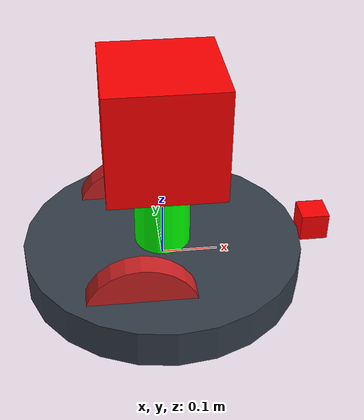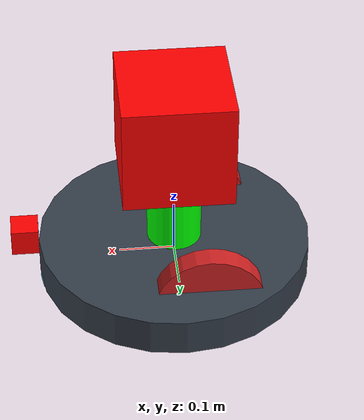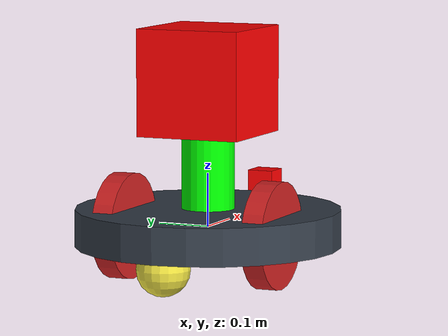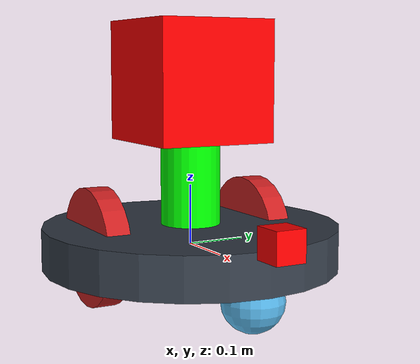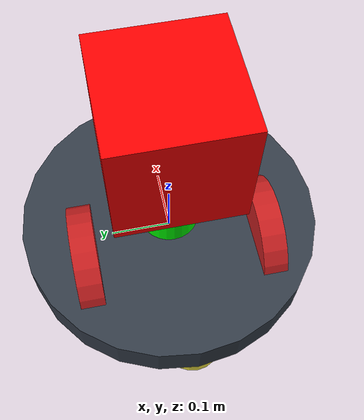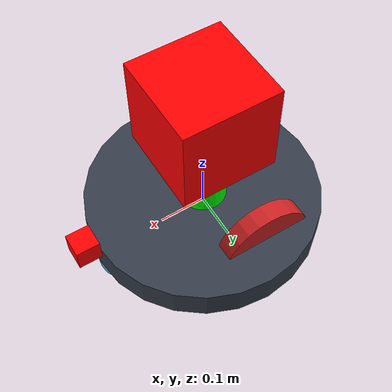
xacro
<?xml version="1.0"?>
<robot xmlns:xacro="http://www.ros.org/wiki/xacro" name="robot_xacro">
    <xacro:include filename="$(find robot_simulation_description)/urdf/robot.gazebo"/>

    <xacro:property name="length_wheel" value="0.04" />
    <xacro:property name="radius_wheel" value="0.1" />

    <xacro:macro name="default_inertial" params="mass">
        <inertial>
            <mass value="${mass}" />
            <origin rpy="0 1.5707 1.5707" xyz="0 0 0"/>
            <inertia ixx="0.000526666666667" ixy="0" ixz="0" iyy="0.000526666666667" iyz="0" izz="0.001"/>
        </inertial>
    </xacro:macro>

    <xacro:macro name="wheel_geometry">
        <geometry>
            <cylinder length="${length_wheel}" radius="${radius_wheel}"/>
        </geometry>
    </xacro:macro>

    <material name="black">
        <color rgba="0.0 0.0 0.0 1.0"/>
    </material>

    <material name="blue">
        <color rgba="0.203125 0.23828125 0.28515625 1.0"/>
    </material>

    <material name="green">
        <color rgba="0.0 0.8 0.0 1.0"/>
    </material>

    <material name="grey">
        <color rgba="0.2 0.2 0.2 1.0"/>
    </material>

    <material name="orange">
        <color rgba="1.0 0.423529411765 0.0392156862745 1.0"/>
    </material>

    <material name="brown">
        <color rgba="0.870588235294 0.811764705882 0.764705882353 1.0"/>
    </material>

    <material name="red">
        <color rgba="0.80078125 0.12890625 0.1328125 1.0"/>
    </material>

    <material name="white">
        <color rgba="1.0 1.0 1.0 1.0"/>
    </material>

    <!--    The moving platform -->
    <link name="link_chassis">
        <!-- pose and inertial -->
        <pose>0 0 0.1 0 0 0</pose>
        <inertial>
            <mass value="5"/>
            <origin rpy="0 0 0" xyz="0 0 0.1"/>
            <inertia ixx="0.0395416666667" ixy="0" ixz="0" iyy="0.106208333333" iyz="0" izz="0.106208333333"/>
        </inertial>
        <!-- body -->
        <collision name="collision_chassis">
            <geometry>
                <cylinder length="0.07" radius="0.25"/>
            </geometry>
        </collision>
        <visual>
            <origin rpy="0 0 0" xyz="0 0 0"/>
            <geometry>
                <cylinder length="0.07" radius="0.25"/>
            </geometry>
            <material name="blue"/>
        </visual>
    </link>

    <!-- caster front  dummy-->
    <link name="dummy_front_castor">
            <xacro:default_inertial mass="0.001"/>
        <collision name="link_dummy_front_castor_collision">
            <origin rpy=" 0 0 0" xyz="0 0 0"/>
            <geometry>
                <sphere radius="0.05"/>
            </geometry>
        </collision>
        <visual name="link_dummy_front_castor_visual">
            <origin rpy=" 0 0 0" xyz="0 0 0"/>
            <geometry>
                <sphere radius="0.05"/>
            </geometry>
        </visual>
    </link>

    <!-- caster front -->
    <link name="link_caster_front_wheel">
            <xacro:default_inertial mass="0.2"/>
        <collision name="link_caster_front_wheel_collision">
            <origin rpy=" 0 0 0" xyz="0 0 0"/>
            <geometry>
                <sphere radius="0.05"/>
            </geometry>
        </collision>
        <visual name="link_caster_front_wheel_visual">
            <origin rpy=" 0 0 0" xyz="0 0 0"/>
            <geometry>
                <sphere radius="0.05"/>
            </geometry>
        </visual>
    </link>

    <!-- caster back  dummy-->
    <link name="dummy_back_castor">
            <xacro:default_inertial mass="0.001"/>
        <collision name="link_dummy_back_castor_collision">
            <origin rpy=" 0 0 0" xyz="0 0 0"/>
            <geometry>
                <sphere radius="0.05"/>
            </geometry>
        </collision>
        <visual name="link_dummy_back_castor_visual">
            <origin rpy=" 0 0 0" xyz="0 0 0"/>
            <geometry>
                <sphere radius="0.05"/>
            </geometry>
        </visual>
    </link>

    <!-- caster back -->
    <link name="link_caster_back_wheel">
            <xacro:default_inertial mass="0.2"/>
        <collision name="link_caster_back_wheel_collision">
            <origin rpy=" 0 0 0" xyz="0 0 0"/>
            <geometry>
                <sphere radius="0.05"/>
            </geometry>
        </collision>
        <visual name="link_caster_back_wheel_visual">
            <origin rpy=" 0 0 0" xyz="0 0 0"/>
            <geometry>
                <sphere radius="0.05"/>
            </geometry>
        </visual>
    </link>

    <!--    The right Wheel -->
    <link name="link_right_wheel">
        <xacro:default_inertial mass="0.2"/>
        <collision name="link_right_wheel_collision">
            <origin rpy="0 1.5707 1.5707" xyz="0 0 0"/>
            <xacro:wheel_geometry />
        </collision>
        <visual name="link_right_wheel_visual">
            <origin rpy="0 1.5707 1.5707" xyz="0 0 0"/>
            <xacro:wheel_geometry />
            <material name="red"/>
        </visual>
    </link>

    <!--    The left wheel  -->
    <link name="link_left_wheel">
        <xacro:default_inertial mass="0.2"/>
        <collision name="link_left_wheel_collision">
            <origin rpy="0 1.5707 1.5707" xyz="0 0 0"/>
            <xacro:wheel_geometry />
        </collision>
        <visual name="link_left_wheel_visual">
            <origin rpy="0 1.5707 1.5707" xyz="0 0 0"/>
            <xacro:wheel_geometry />
            <material name="red"/>
        </visual>
    </link>

    <!--    The neck    -->
    <link name="link_neck">
        <inertial>
            <mass value="0.1"/>
            <origin xyz="0 0 0" rpy="0 0 0" />
            <inertia ixx="0.0000416666667" ixy="0" ixz="0" iyy="0.0000416666667" iyz="0" izz="0.0000416666667"/>
        </inertial>
        <collision name="link_rotating_base_collision">
            <origin rpy="0 0 0" xyz="0 0 0" />
            <geometry>
                <cylinder length="0.15" radius="0.05"/>
            </geometry>
        </collision>
        <visual name="link_rotating_base_visual" >
            <origin rpy="0 0 0" xyz="0 0 0" />
            <geometry>
                <cylinder length="0.15" radius="0.05"/>
            </geometry>
            <material name="green">
              <color rgba="0 1 0 1"/>
            </material>
        </visual>
    </link>

    <!--    The Camera  -->
    <link name="camera_link">
        <collision>
            <origin xyz="0 0 0" rpy="0 0 0"/>
            <geometry>
                <box size="0.2 0.2 0.2"/>
            </geometry>
        </collision>
        <visual>
            <origin xyz="0 0 0" rpy="0 0 0"/>
            <geometry>
                <box size="0.2 0.2 0.2"/>
            </geometry>
            <material name="brown">
                <color rgba="1 0 0 1"/>
            </material>
        </visual>
        <inertial>
            <mass value="1e-5" />
            <origin xyz="0 0 0" rpy="0 0 0"/>
            <inertia ixx="1e-6" ixy="0" ixz="0" iyy="1e-6" iyz="0" izz="1e-6" />
        </inertial>
    </link>

    <link name="hokuyo_link">
        <collision>
          <origin xyz="0 0 0.025" rpy="0 0 0"/>
          <geometry>
      <box size="0.05 0.05 0.05"/>
          </geometry>
        </collision>
        <visual>
          <origin xyz="0 0 0.025" rpy="0 0 0"/>
          <geometry>
      <box size="0.05 0.05 0.05"/>
          </geometry>
          <material name="red">
            <color rgba="1 0 0 1"/>
          </material>
        </visual>
        <inertial>
          <mass value="1e-5" />
          <origin xyz="0 0 0" rpy="0 0 0"/>
          <inertia ixx="1e-6" ixy="0" ixz="0" iyy="1e-6" iyz="0" izz="1e-6" />
        </inertial>
    </link>

    <joint name="joint_caster_back_dummy" type="continuous">
        <origin rpy="0 0 0" xyz="-0.2 0 -0.05"/>
        <child link="dummy_back_castor"/>
        <parent link="link_chassis"/>
        <axis rpy="0 0 0" xyz="1 0 0"/>
        <limit effort="10000" velocity="1000"/>
        <joint_properties damping="1.0" friction="1.0"/>
    </joint>

    <joint name="joint_caster_back_wheel" type="continuous">
        <origin rpy="0 0 0" xyz="0 0 0"/>
        <child link="link_caster_back_wheel"/>
        <parent link="dummy_back_castor"/>
        <axis rpy="0 0 0" xyz="0 1 0"/>
        <limit effort="10000" velocity="1000"/>
        <joint_properties damping="1.0" friction="1.0"/>
    </joint>

    <joint name="joint_caster_front_dummy" type="continuous">
        <origin rpy="0 0 0" xyz="0.2 0 -0.05"/>
        <child link="dummy_front_castor"/>
        <parent link="link_chassis"/>
        <axis rpy="0 0 0" xyz="1 0 0"/>
        <limit effort="10000" velocity="1000"/>
        <joint_properties damping="1.0" friction="1.0"/>
    </joint>

    <joint name="joint_caster_front_wheel" type="continuous">
        <origin rpy="0 0 0" xyz="0 0 0"/>
        <child link="link_caster_front_wheel"/>
        <parent link="dummy_front_castor"/>
        <axis rpy="0 0 0" xyz="0 1 0"/>
        <limit effort="10000" velocity="1000"/>
        <joint_properties damping="1.0" friction="1.0"/>
    </joint>

    <joint name="joint_right_wheel" type="continuous">
        <origin rpy="0 0 0" xyz="-0.05 0.15 0"/>
        <child link="link_right_wheel"/>
        <parent link="link_chassis"/>
        <axis rpy="0 0 0" xyz="0 1 0"/>
        <limit effort="10000" velocity="1000"/>
        <joint_properties damping="1.0" friction="1.0"/>
    </joint>

    <joint name="joint_left_wheel" type="continuous">
        <origin rpy="0 0 0" xyz="-0.05 -0.15 0"/>
        <child link="link_left_wheel"/>
        <parent link="link_chassis"/>
        <axis rpy="0 0 0" xyz="0 1 0"/>
        <limit effort="10000" velocity="1000"/>
        <joint_properties damping="1.0" friction="1.0"/>
    </joint>

    <!--    Joint form moving platform to the rotating base  -->
    <joint name="joint_neck" type="fixed">
        <origin rpy="0 0 0" xyz="0 0 0.1"/>
        <child link="link_neck"/>
        <parent link="link_chassis"/>
    </joint>

    <!--    Joint form the neck to the camera  -->
    <joint name="camera_joint" type="fixed">
        <origin xyz="0.0 0 0.175" rpy="0 0 0"/>
        <parent link="link_neck"/>
        <child link="camera_link"/>
    </joint>

    <joint name="hokuyo_joint" type="fixed">
        <axis xyz="0 1 0" />
        <origin xyz="0.275 0 0.025" rpy="0 0 0"/>
        <parent link="link_chassis"/>
        <child link="hokuyo_link"/>
    </joint>

</robot>
